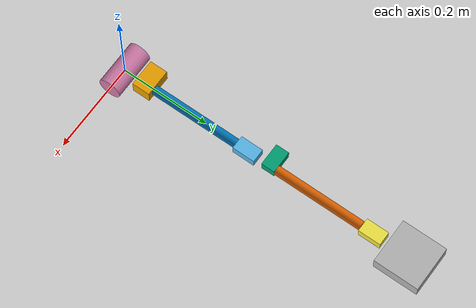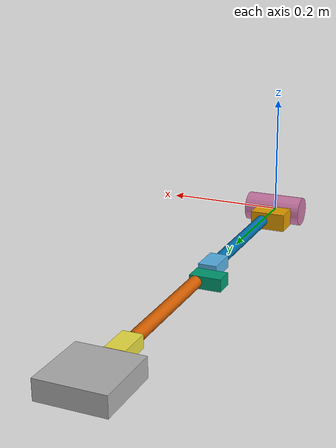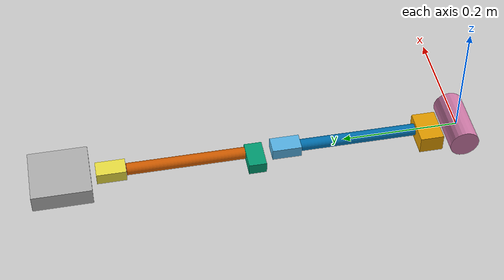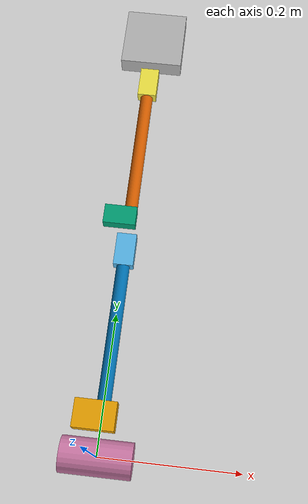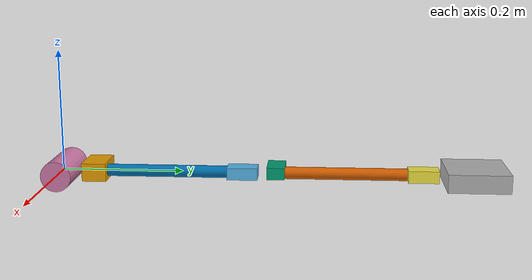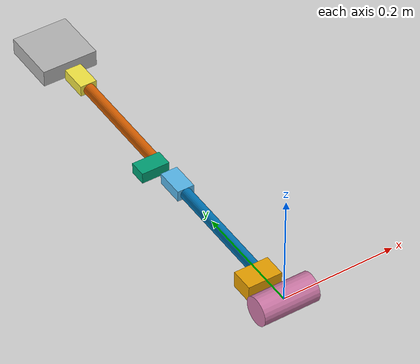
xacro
<?xml version="1.0"?>

<robot xmlns:xacro="http://www.ros.org/wiki/xacro" name="simple_movel_arm">

<!-- INERTIAS -->
    <xacro:macro name="box_inertia" params="mass xS yS zS">
		<inertia 	ixx="${1/12*mass*(zS*zS + yS*yS)}"
					iyy="${1/12*mass*(zS*zS + xS*xS)}"
					izz="${1/12*mass*(xS*xS + yS*yS)}"
					ixy="0.0" ixz="0.0" iyz="0.0" />
	</xacro:macro>
	<xacro:macro name="cylinder_inertia" params="mass r h">
		<inertia 	ixx="${mass * (3 * r * r + h * h) / 12}" ixy="0" ixz="0"
					iyy="${mass * r * r / 2}" iyz="0"
					izz="${mass * (3 * r * r + h * h) / 12}" />
	</xacro:macro>

	<!-- Robot dimensions and Propertys -->
	<xacro:property name="tube_length" value="0.2" />
	<xacro:property name="tube_radius" value="0.01" />
	<xacro:property name="tube_mass" value="0.1" />
	<xacro:property name="servo_mass" value="0.3" />

	<xacro:macro name="servo" params="prefix mass xS yS zS origins_xyz origins_rpy">
		<link name="Box${prefix}_link">
			<visual>
				<geometry>
					<box size="${xS} ${yS} ${zS}"/>
				</geometry>
				<origin xyz="${origins_xyz}" rpy="${origins_rpy}" />
			</visual>
			<collision>
				<origin xyz="${origins_xyz}" rpy="${origins_rpy}"/>
				<geometry>
					<box size="${xS} ${yS} ${zS}"/>
				</geometry>
			</collision>
			<inertial>
				<origin xyz="${origins_xyz}" rpy="${origins_rpy}" />
				<mass value="${mass}" />
				<xacro:box_inertia mass="${mass}" xS="${xS}" yS="${yS}" zS="${zS}"/>
			</inertial>
		</link>
	</xacro:macro>

	<xacro:macro name="tube" params="prefix length radius mass" >
		<link name="Tube${prefix}_link">
			<visual>
				<geometry>
					<cylinder length="${length}" radius="${radius}"/>
				</geometry>
				<origin rpy="1.57075 0 0" xyz="0 ${length / 2} 0"/>
			</visual>
			<collision>
				<origin rpy="1.57075 0 0" xyz="0 ${length / 2} 0"/>
				<geometry>
					<cylinder length="${length}" radius="${radius}"/>
				</geometry>
			</collision>
			<inertial>
				<origin rpy="1.57075 0 0" xyz="0 ${length / 2} 0"/>
				<mass value="${mass}" />
				<xacro:cylinder_inertia mass="${mass}" r="${radius}" h="${length}" />
			</inertial>
		</link>
	</xacro:macro>

	<xacro:servo prefix="0" mass="${servo_mass}" xS="0.06" yS="0.04" zS="0.03" origins_xyz="-0.01 0.055 0" 	origins_rpy="0 0 0"/>
	<xacro:servo prefix="1" mass="${servo_mass}" xS="0.03" yS="0.05" zS="0.02" origins_xyz="0 0.025 0" 		origins_rpy="0 0 0"/>
	<xacro:servo prefix="2" mass="${servo_mass}" xS="0.05" yS="0.03" zS="0.02" origins_xyz="-0.015 0.04 0" 	origins_rpy="0 0 0"/>
	<xacro:servo prefix="3" mass="${servo_mass}" xS="0.03" yS="0.05" zS="0.02" origins_xyz="0 0.026 0" 		origins_rpy="0 0 0"/>

	<xacro:tube prefix="0" radius="${tube_radius}" length="${tube_length}" mass="${tube_mass}" />
	<xacro:tube prefix="1" radius="${tube_radius}" length="${tube_length}" mass="${tube_mass}" />

	<link name="ombro_link">
		<visual>
			<geometry>
				<cylinder length="0.1" radius="0.025"/>
			</geometry>
			<origin rpy="0 1.57075 0"/>
		</visual>
		<collision>
			<origin rpy="0 1.57075 0"/>
			<geometry>
				<cylinder length="0.1" radius="0.025"/>
			</geometry>
		</collision>
		<inertial>
			<origin rpy="0 1.57075 0" />
			<mass value="0.5" />
			<xacro:cylinder_inertia mass="0.5" r="0.025" h="0.1" />
		</inertial>
	</link>

	<link name="gripper_link">
		<visual>
			<geometry>
				<box size="0.1 0.1 0.03"/>
			</geometry>
			<origin xyz="0 0.07 0"/>
		</visual>
		<collision>
			<origin xyz="0 0.07 0"/>
			<geometry>
				<box size="0.1 0.1 0.03"/>
			</geometry>
		</collision>
		<inertial>
			<origin xyz="0 0.07 0"/>
			<mass value="0.3" />
			<xacro:box_inertia mass="0.3" xS="0.1" yS="0.1" zS="0.03"/>
		</inertial>
	</link>

	<!-- Revolute Joints -->
	<joint name="joint1" type="revolute">
		<parent link="ombro_link"/>
		<child link="Box0_link"/>
		<origin xyz="0 0 0"/>
		<limit lower="-1.57075" upper="1.57075" effort="1000" velocity="10"/>
		<axis xyz="1 0 0"/>
	</joint>

	<joint name="joint2" type="revolute">
		<parent link="Box0_link"/>
		<child link="Tube0_link"/>
		<origin xyz="0 0.075 0"/>
		<limit lower="-1.57075" upper="1.57075" effort="1000" velocity="10"/>
		<axis xyz="0 1 0"/>
	</joint>

	<joint name="joint4" type="revolute">
		<parent link="Box1_link"/>
		<child link="Box2_link"/>
		<origin xyz="0 0.04 0"/>
		<limit lower="-3.14" upper="3.14" effort="1000" velocity="10"/>
		<axis xyz="1 0 0"/>
	</joint>

	<joint name="joint5" type="revolute">
		<parent link="Box2_link"/>
		<child link="Tube1_link"/>
		<origin xyz="0 0.055 0"/>
		<limit lower="-3.14" upper="3.14" effort="1000" velocity="10"/>
		<axis xyz="0 1 0"/>
	</joint>

	<joint name="joint7" type="revolute">
		<parent link="Box3_link"/>
		<child link="gripper_link"/>
		<origin xyz="0 0.04 0"/>
		<limit lower="-1.57075" upper="1.57075" effort="1000" velocity="10"/>
		<axis xyz="1 0 0"/>
	</joint>

	<!-- Fixed joints -->
	<joint name="joint3" type="fixed">
		<parent link="Tube1_link"/>
		<child link="Box3_link"/>
		<origin xyz="0 0.2 0"/>
	</joint>

	<joint name="joint6" type="fixed">
		<parent link="Tube0_link"/>
		<child link="Box1_link"/>
		<origin xyz="0 0.2 0"/>
	</joint>

	<!-- Controllers -->
	<xacro:macro name="controllers" params="prefix">
		<transmission name="${prefix}_trans">
			<type>transmission_interface/SimpleTransmission</type>
			<joint name="${prefix}">
				<hardwareInterface>hardware_interface/VelocityJointInterface</hardwareInterface>
			</joint>
			<actuator name="${prefix}_motor">
				<mechanicalReduction>1</mechanicalReduction>
				<hardwareInterface>hardware_interface/VelocityJointInterface</hardwareInterface>
			</actuator>
		</transmission>
	</xacro:macro>
	<xacro:controllers prefix="joint1" />
	<xacro:controllers prefix="joint2" />
	<xacro:controllers prefix="joint4" />
	<xacro:controllers prefix="joint5" />
	<xacro:controllers prefix="joint7" />

	<!-- Gazebo plugin -->
	<gazebo>
		<plugin name="gazebo_ros_control" filename="libgazebo_ros_control.so">
			<robotNamespace>/robotic_arm</robotNamespace> <!-- namespace for controllers etc... -->
		</plugin>
	</gazebo>

	<!-- GAZEBO COLORS -->
	<gazebo reference="wall_link">
		<visual>
			<material>
				<ambient>0.4 0.7 0.4 0.6</ambient>
				<diffuse>0.4 0.7 0.4 0.6</diffuse>
				<specular>0.4 0.7 0.4 0.6</specular>
				<emissive>0.0 0.0 0.0 0.0</emissive>
			</material>
		</visual>
	</gazebo>
	<gazebo reference="ombro_link">
		<visual>
			<material>
				<ambient>0.6 0.6 0.6 1.0</ambient>
				<diffuse>0.6 0.6 0.6 1.0</diffuse>
				<specular>0.6 0.6 0.6 1.0</specular>
				<emissive>0.0 0.0 0.0 0.0</emissive>
			</material>
		</visual>
	</gazebo>
	<gazebo reference="gripper_link">
		<visual>
			<material>
				<ambient>0.4 0.4 0.7 1.0</ambient>
				<diffuse>0.4 0.4 0.7 1.0</diffuse>
				<specular>0.4 0.4 0.7 1.0</specular>
				<emissive>0.0 0.0 0.0 0.0</emissive>
			</material>
		</visual>
	</gazebo>
	<xacro:macro name="servo_color" params="link_name">
		<gazebo reference="${link_name}">
			<visual>
				<material>
					<ambient>0 0 0 1.0</ambient>
					<diffuse>0 0 0 1.0</diffuse>
					<specular>0 0 0 1.0</specular>
					<emissive>0.0 0.0 0.0 0.0</emissive>
				</material>
			</visual>
		</gazebo>
	</xacro:macro>
	<xacro:servo_color link_name="Box0_link" />
	<xacro:servo_color link_name="Box1_link" />
	<xacro:servo_color link_name="Box2_link" />
	<xacro:servo_color link_name="Box3_link" />
	<xacro:macro name="tube_color" params="link_name">
		<gazebo reference="${link_name}">
			<visual>
				<material>
					<ambient>0.7 0.3 0.3 1.0</ambient>
					<diffuse>0.7 0.3 0.3 1.0</diffuse>
					<specular>0.7 0.3 0.3 1.0</specular>
					<emissive>0.0 0.0 0.0 0.0</emissive>
				</material>
			</visual>
		</gazebo>
	</xacro:macro>
	<xacro:tube_color link_name="Tube0_link" />
	<xacro:tube_color link_name="Tube1_link" />

</robot>
